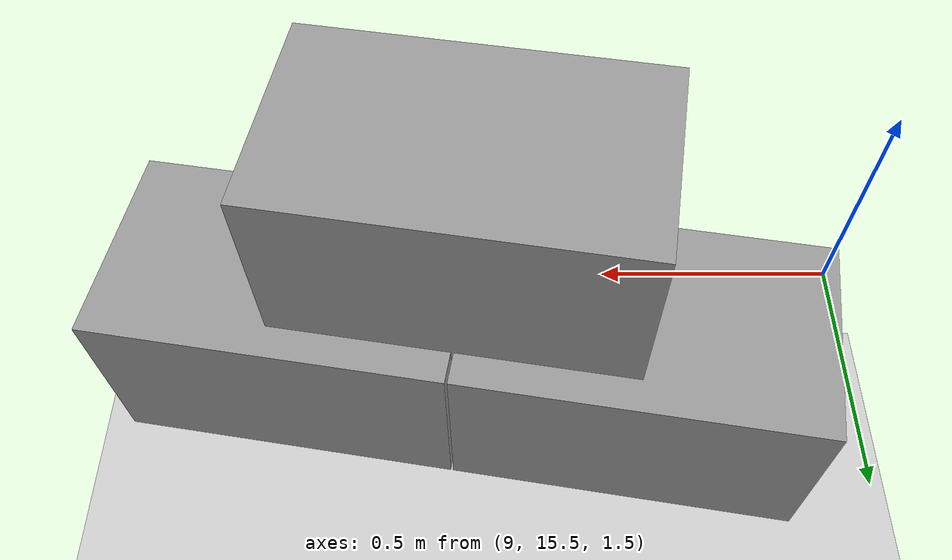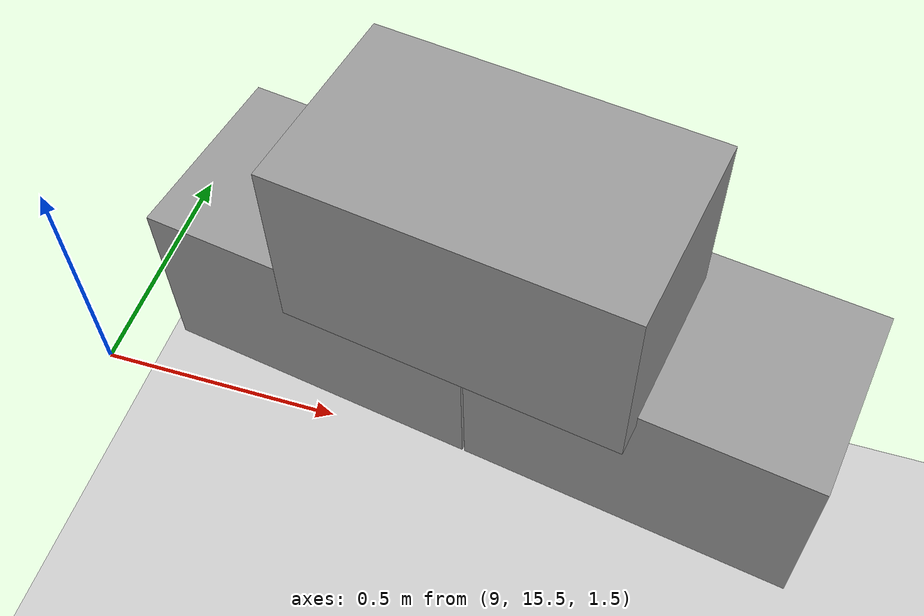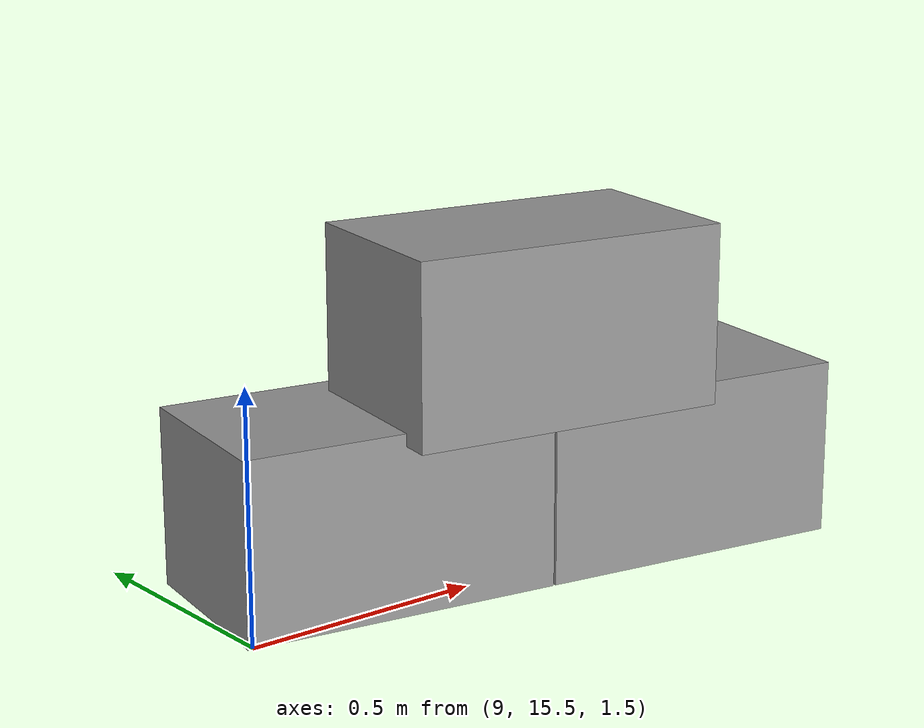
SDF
<sdf version="1.7">
 <world name="default">
  <model name="ground_plane">
   <static>1</static>
   <link name="link">
    <collision name="collision">
     <geometry><plane><normal>0 0 1</normal><size>100 100</size></plane></geometry>
     <surface>
      <contact><collide_bitmask>65535</collide_bitmask></contact>
      <friction><ode><mu>100</mu><mu2>50</mu2></ode></friction>
     </surface>
    </collision>
    <visual name="visual">
     <cast_shadows>0</cast_shadows>
     <geometry><plane><normal>0 0 1</normal><size>100 100</size></plane></geometry>
     <material>
      <script><uri>file://media/materials/scripts/gazebo.material</uri><name>Gazebo/Grey</name></script>
     </material>
    </visual>
   </link>
  </model>
  <model name="Add_Box_clone_clone_3_clone_4">
   <link name="link">
    <inertial>
     <mass>1</mass>
     <inertia>
      <ixx>0.166667</ixx>
      <ixy>0</ixy>
      <ixz>0</ixz>
      <iyy>0.166667</iyy>
      <iyz>0</iyz>
      <izz>0.166667</izz>
     </inertia>
    </inertial>
    <kinematic>1</kinematic>
    <gravity>0</gravity>
    <visual name="visual">
     <geometry><box><size>0.686 0.406 0.381</size></box></geometry>
     <material>
      <script><name>Gazebo/Grey</name><uri>file://media/materials/scripts/gazebo.material</uri></script>
      <shader type="pixel"><normal_map>__default__</normal_map></shader>
      <ambient>0.3 0.3 0.3 1</ambient>
      <diffuse>0.7 0.7 0.7 1</diffuse>
      <specular>0.01 0.01 0.01 1</specular>
      <emissive>0 0 0 1</emissive>
     </material>
    </visual>
    <collision name="collision">
     <geometry><box><size>1 1 1</size></box></geometry>
     <surface>
      <friction>
       <ode><mu>1</mu><mu2>1</mu2><fdir1>0 0 0</fdir1><slip1>0</slip1><slip2>0</slip2></ode>
       <torsional>
        <coefficient>1</coefficient>
        <patch_radius>0</patch_radius>
        <surface_radius>0</surface_radius>
        <use_patch_radius>1</use_patch_radius>
        <ode><slip>0</slip></ode>
       </torsional>
      </friction>
      <bounce><restitution_coefficient>0</restitution_coefficient><threshold>1e+06</threshold></bounce>
      <contact>
       <collide_without_contact>0</collide_without_contact>
       <collide_without_contact_bitmask>1</collide_without_contact_bitmask>
       <collide_bitmask>1</collide_bitmask>
       <ode>
        <soft_cfm>0</soft_cfm>
        <soft_erp>0.2</soft_erp>
        <kp>1e+13</kp>
        <kd>1</kd>
        <max_vel>0.01</max_vel>
        <min_depth>0</min_depth>
       </ode>
       <bullet>
        <split_impulse>1</split_impulse>
        <split_impulse_penetration_threshold>-0.01</split_impulse_penetration_threshold>
        <soft_cfm>0</soft_cfm>
        <soft_erp>0.2</soft_erp>
        <kp>1e+13</kp>
        <kd>1</kd>
       </bullet>
      </contact>
     </surface>
    </collision>
   </link>
   <link name="link_clone">
    <inertial>
     <mass>1</mass>
     <inertia>
      <ixx>0.166667</ixx>
      <ixy>0</ixy>
      <ixz>0</ixz>
      <iyy>0.166667</iyy>
      <iyz>0</iyz>
      <izz>0.166667</izz>
     </inertia>
    </inertial>
    <pose>-0.343354 -0.063316 0.354303 1e-05 -0 0</pose>
    <gravity>0</gravity>
    <visual name="visual">
     <geometry><box><size>0.686 0.406 0.381</size></box></geometry>
     <material>
      <script><name>Gazebo/Grey</name><uri>file://media/materials/scripts/gazebo.material</uri></script>
      <shader type="pixel"><normal_map>__default__</normal_map></shader>
      <ambient>0.3 0.3 0.3 1</ambient>
      <diffuse>0.7 0.7 0.7 1</diffuse>
      <specular>0.01 0.01 0.01 1</specular>
      <emissive>0 0 0 1</emissive>
     </material>
    </visual>
    <collision name="collision">
     <geometry><box><size>1 1 1</size></box></geometry>
     <surface>
      <friction>
       <ode><mu>1</mu><mu2>1</mu2><fdir1>0 0 0</fdir1><slip1>0</slip1><slip2>0</slip2></ode>
       <torsional>
        <coefficient>1</coefficient>
        <patch_radius>0</patch_radius>
        <surface_radius>0</surface_radius>
        <use_patch_radius>1</use_patch_radius>
        <ode><slip>0</slip></ode>
       </torsional>
      </friction>
      <bounce><restitution_coefficient>0</restitution_coefficient><threshold>1e+06</threshold></bounce>
      <contact>
       <collide_without_contact>0</collide_without_contact>
       <collide_without_contact_bitmask>1</collide_without_contact_bitmask>
       <collide_bitmask>1</collide_bitmask>
       <ode>
        <soft_cfm>0</soft_cfm>
        <soft_erp>0.2</soft_erp>
        <kp>1e+13</kp>
        <kd>1</kd>
        <max_vel>0.01</max_vel>
        <min_depth>0</min_depth>
       </ode>
       <bullet>
        <split_impulse>1</split_impulse>
        <split_impulse_penetration_threshold>-0.01</split_impulse_penetration_threshold>
        <soft_cfm>0</soft_cfm>
        <soft_erp>0.2</soft_erp>
        <kp>1e+13</kp>
        <kd>1</kd>
       </bullet>
      </contact>
     </surface>
    </collision>
   </link>
   <link name="link_clone_clone">
    <inertial>
     <mass>1</mass>
     <inertia>
      <ixx>0.166667</ixx>
      <ixy>0</ixy>
      <ixz>0</ixz>
      <iyy>0.166667</iyy>
      <iyz>0</iyz>
      <izz>0.166667</izz>
     </inertia>
    </inertial>
    <pose>-0.690786 -0.000183 -1e-05 2e-05 -0 0</pose>
    <gravity>0</gravity>
    <visual name="visual">
     <geometry><box><size>0.686 0.406 0.381</size></box></geometry>
     <material>
      <script><name>Gazebo/Grey</name><uri>file://media/materials/scripts/gazebo.material</uri></script>
      <shader type="pixel"><normal_map>__default__</normal_map></shader>
      <ambient>0.3 0.3 0.3 1</ambient>
      <diffuse>0.7 0.7 0.7 1</diffuse>
      <specular>0.01 0.01 0.01 1</specular>
      <emissive>0 0 0 1</emissive>
     </material>
    </visual>
    <collision name="collision">
     <geometry><box><size>1 1 1</size></box></geometry>
     <surface>
      <friction>
       <ode><mu>1</mu><mu2>1</mu2><fdir1>0 0 0</fdir1><slip1>0</slip1><slip2>0</slip2></ode>
       <torsional>
        <coefficient>1</coefficient>
        <patch_radius>0</patch_radius>
        <surface_radius>0</surface_radius>
        <use_patch_radius>1</use_patch_radius>
        <ode><slip>0</slip></ode>
       </torsional>
      </friction>
      <bounce><restitution_coefficient>0</restitution_coefficient><threshold>1e+06</threshold></bounce>
      <contact>
       <collide_without_contact>0</collide_without_contact>
       <collide_without_contact_bitmask>1</collide_without_contact_bitmask>
       <collide_bitmask>1</collide_bitmask>
       <ode>
        <soft_cfm>0</soft_cfm>
        <soft_erp>0.2</soft_erp>
        <kp>1e+13</kp>
        <kd>1</kd>
        <max_vel>0.01</max_vel>
        <min_depth>0</min_depth>
       </ode>
       <bullet>
        <split_impulse>1</split_impulse>
        <split_impulse_penetration_threshold>-0.01</split_impulse_penetration_threshold>
        <soft_cfm>0</soft_cfm>
        <soft_erp>0.2</soft_erp>
        <kp>1e+13</kp>
        <kd>1</kd>
       </bullet>
      </contact>
     </surface>
    </collision>
   </link>
   <static>0</static>
   <pose>10.1375 15.6845 1.61518 0 0 -0.159918</pose>
  </model>
 </world>
</sdf>
